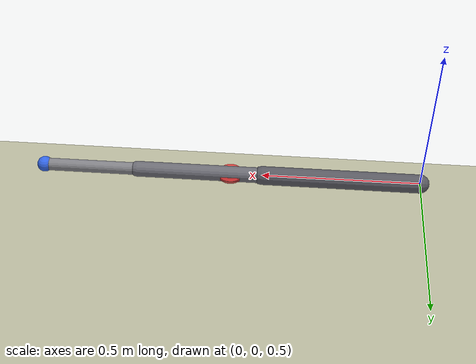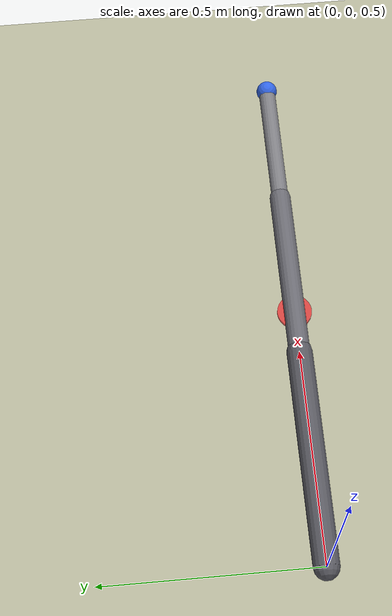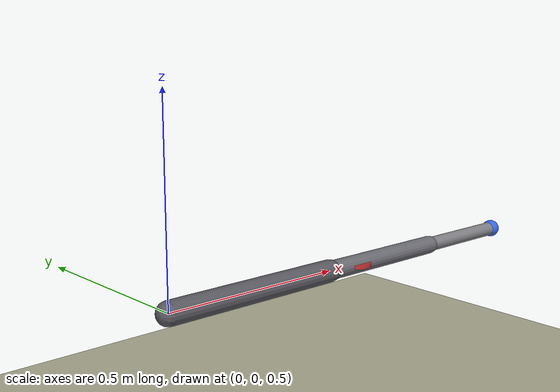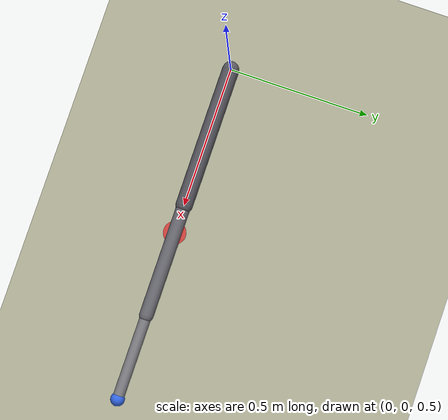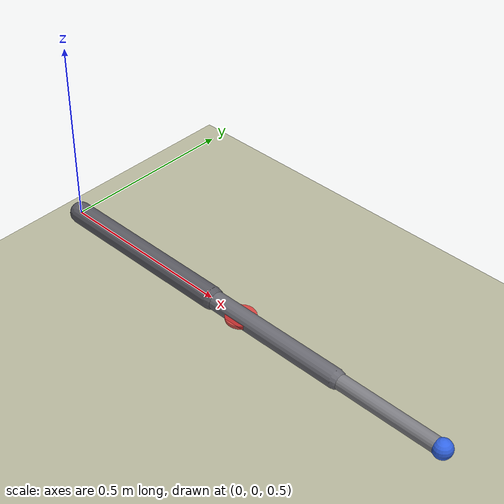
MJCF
<mujoco model="arm3dof_touch">
  <compiler angle="radian"/>
  <option gravity="0 0 -9.81" timestep="0.002" cone="elliptic" impratio="10"/>

  <default>
    <joint damping="0.5" frictionloss="0.1" armature="0.01"/>
    <geom condim="6" friction="0.8 0.02 0.001" solimp="0.99 0.999 0.001"/>
    <motor ctrllimited="true" ctrlrange="-30 30"/>
  </default>

  <worldbody>
    <light directional="true" diffuse="0.8 0.8 0.8" specular="0.2 0.2 0.2" pos="0 0 3"/>

    <body name="base" pos="0 0 0.5">
      <joint name="joint1" type="hinge" axis="0 0 1" range="-2.0 2.0"/>
      <geom name="link1_geom" type="capsule" fromto="0 0 0 0.5 0 0" size="0.03" mass="0.5" rgba="0.35 0.35 0.38 1"/>

      <body name="link2" pos="0.5 0 0">
        <joint name="joint2" type="hinge" axis="0 0 1" range="-2.5 2.5"/>
        <geom name="link2_geom" type="capsule" fromto="0 0 0 0.4 0 0" size="0.025" mass="0.3" rgba="0.42 0.42 0.45 1"/>

        <body name="link3" pos="0.4 0 0">
          <joint name="joint3" type="hinge" axis="0 0 1" range="-2.5 2.5"/>
          <geom name="link3_geom" type="capsule" fromto="0 0 0 0.3 0 0" size="0.02" mass="0.15" rgba="0.5 0.5 0.52 1"/>

          <body name="ee" pos="0.3 0 0">
            <geom name="ee_geom" type="sphere" size="0.025" mass="0.05" rgba="0.2 0.4 0.9 1"/>
            <site name="ft_sensor" pos="0 0 0" size="0.01"/>
          </body>
        </body>
      </body>
    </body>

    <body name="target" pos="0.6 0.0 0.5">
      <geom name="target_geom" type="cylinder" size="0.04 0.005" rgba="0.9 0.2 0.2 0.8" contype="1" conaffinity="1"/>
    </body>

    <geom name="table" type="plane" size="2 2 0.1" pos="0 0 0" rgba="0.7 0.7 0.6 1" friction="0.6 0.005 0.0001"/>
    <camera name="overhead" pos="0 0 1.8" euler="0 0 0" fovy="60" mode="fixed"/>
  </worldbody>

  <actuator>
    <motor name="m1" joint="joint1"/>
    <motor name="m2" joint="joint2"/>
    <motor name="m3" joint="joint3"/>
  </actuator>

  <sensor>
    <force name="ft_force" site="ft_sensor"/>
    <torque name="ft_torque" site="ft_sensor"/>
  </sensor>
</mujoco>
